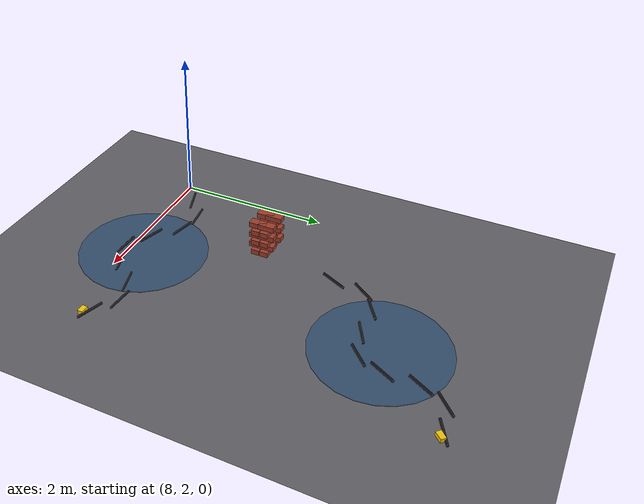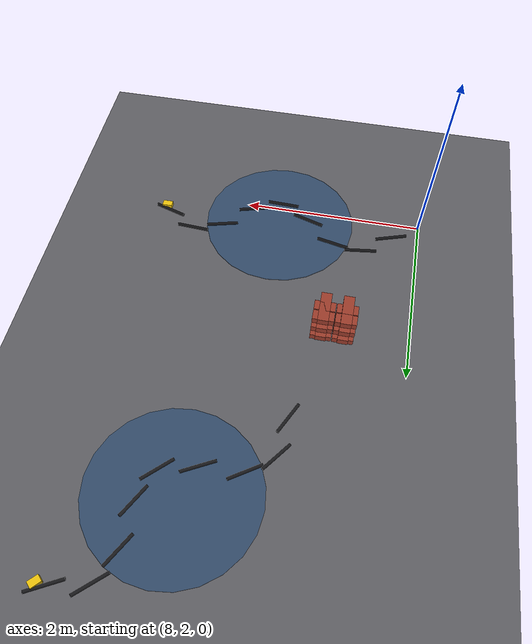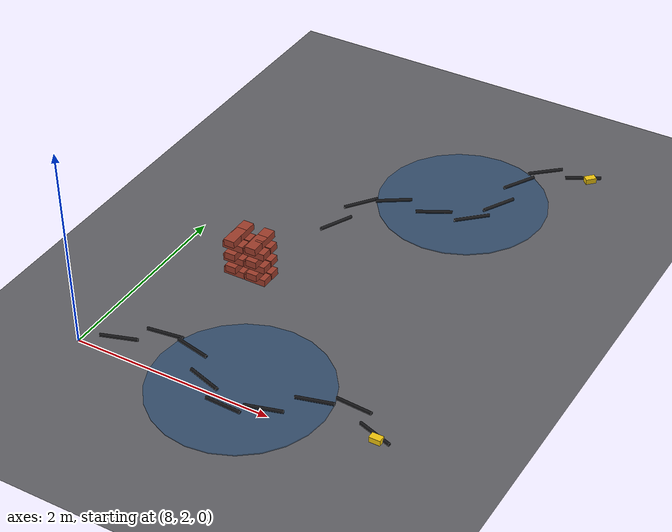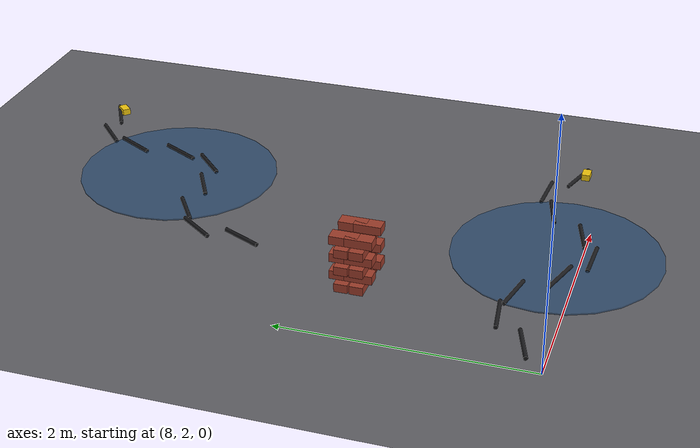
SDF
<sdf version="1.6">
 <world name="construction_lab_B">
  <model name="ground">
   <static>1</static>
   <link name="ground_link">
    <collision name="ground_col">
     <geometry><plane><normal>0 0 1</normal><size>60 60</size></plane></geometry>
     <surface><friction><ode><mu>0.9</mu><mu2>0.9</mu2></ode></friction></surface>
    </collision>
    <visual name="ground_vis">
     <geometry><plane><normal>0 0 1</normal><size>60 60</size></plane></geometry>
     <material><ambient>0.30 0.30 0.32 1</ambient><diffuse>0.38 0.38 0.40 1</diffuse></material>
    </visual>
   </link>
  </model>
  <model name="hazard_B5">
   <static>1</static>
   <link name="hB5_brick_stack_walkway_s00">
    <pose>8.685 3.54 0.035 0 0 0</pose>
    <gravity>0</gravity>
    <collision name="hB5_brick_stack_walkway_s00_col">
     <geometry><box><size>0.22 0.11 0.07</size></box></geometry>
    </collision>
    <visual name="hB5_brick_stack_walkway_s00_vis">
     <geometry><box><size>0.22 0.11 0.07</size></box></geometry>
     <material>
      <ambient>0.62 0.24 0.17 1</ambient>
      <diffuse>0.62 0.24 0.17 1</diffuse>
      <specular>0.1 0.1 0.1 1</specular>
     </material>
    </visual>
   </link>
   <link name="hB5_brick_stack_walkway_s01">
    <pose>8.915 3.54 0.035 0 0 0</pose>
    <gravity>0</gravity>
    <collision name="hB5_brick_stack_walkway_s01_col">
     <geometry><box><size>0.22 0.11 0.07</size></box></geometry>
    </collision>
    <visual name="hB5_brick_stack_walkway_s01_vis">
     <geometry><box><size>0.22 0.11 0.07</size></box></geometry>
     <material>
      <ambient>0.62 0.24 0.17 1</ambient>
      <diffuse>0.62 0.24 0.17 1</diffuse>
      <specular>0.1 0.1 0.1 1</specular>
     </material>
    </visual>
   </link>
   <link name="hB5_brick_stack_walkway_s02">
    <pose>8.685 3.66 0.035 0 0 0</pose>
    <gravity>0</gravity>
    <collision name="hB5_brick_stack_walkway_s02_col">
     <geometry><box><size>0.22 0.11 0.07</size></box></geometry>
    </collision>
    <visual name="hB5_brick_stack_walkway_s02_vis">
     <geometry><box><size>0.22 0.11 0.07</size></box></geometry>
     <material>
      <ambient>0.62 0.24 0.17 1</ambient>
      <diffuse>0.62 0.24 0.17 1</diffuse>
      <specular>0.1 0.1 0.1 1</specular>
     </material>
    </visual>
   </link>
   <link name="hB5_brick_stack_walkway_s03">
    <pose>8.915 3.66 0.035 0 0 0</pose>
    <gravity>0</gravity>
    <collision name="hB5_brick_stack_walkway_s03_col">
     <geometry><box><size>0.22 0.11 0.07</size></box></geometry>
    </collision>
    <visual name="hB5_brick_stack_walkway_s03_vis">
     <geometry><box><size>0.22 0.11 0.07</size></box></geometry>
     <material>
      <ambient>0.62 0.24 0.17 1</ambient>
      <diffuse>0.62 0.24 0.17 1</diffuse>
      <specular>0.1 0.1 0.1 1</specular>
     </material>
    </visual>
   </link>
   <link name="hB5_brick_stack_walkway_s10">
    <pose>8.685 3.54 0.11 0 0 1.5708</pose>
    <gravity>0</gravity>
    <collision name="hB5_brick_stack_walkway_s10_col">
     <geometry><box><size>0.22 0.11 0.07</size></box></geometry>
    </collision>
    <visual name="hB5_brick_stack_walkway_s10_vis">
     <geometry><box><size>0.22 0.11 0.07</size></box></geometry>
     <material>
      <ambient>0.62 0.24 0.17 1</ambient>
      <diffuse>0.62 0.24 0.17 1</diffuse>
      <specular>0.1 0.1 0.1 1</specular>
     </material>
    </visual>
   </link>
   <link name="hB5_brick_stack_walkway_s11">
    <pose>8.915 3.54 0.11 0 0 1.5708</pose>
    <gravity>0</gravity>
    <collision name="hB5_brick_stack_walkway_s11_col">
     <geometry><box><size>0.22 0.11 0.07</size></box></geometry>
    </collision>
    <visual name="hB5_brick_stack_walkway_s11_vis">
     <geometry><box><size>0.22 0.11 0.07</size></box></geometry>
     <material>
      <ambient>0.62 0.24 0.17 1</ambient>
      <diffuse>0.62 0.24 0.17 1</diffuse>
      <specular>0.1 0.1 0.1 1</specular>
     </material>
    </visual>
   </link>
   <link name="hB5_brick_stack_walkway_s12">
    <pose>8.685 3.66 0.11 0 0 1.5708</pose>
    <gravity>0</gravity>
    <collision name="hB5_brick_stack_walkway_s12_col">
     <geometry><box><size>0.22 0.11 0.07</size></box></geometry>
    </collision>
    <visual name="hB5_brick_stack_walkway_s12_vis">
     <geometry><box><size>0.22 0.11 0.07</size></box></geometry>
     <material>
      <ambient>0.62 0.24 0.17 1</ambient>
      <diffuse>0.62 0.24 0.17 1</diffuse>
      <specular>0.1 0.1 0.1 1</specular>
     </material>
    </visual>
   </link>
   <link name="hB5_brick_stack_walkway_s13">
    <pose>8.915 3.66 0.11 0 0 1.5708</pose>
    <gravity>0</gravity>
    <collision name="hB5_brick_stack_walkway_s13_col">
     <geometry><box><size>0.22 0.11 0.07</size></box></geometry>
    </collision>
    <visual name="hB5_brick_stack_walkway_s13_vis">
     <geometry><box><size>0.22 0.11 0.07</size></box></geometry>
     <material>
      <ambient>0.62 0.24 0.17 1</ambient>
      <diffuse>0.62 0.24 0.17 1</diffuse>
      <specular>0.1 0.1 0.1 1</specular>
     </material>
    </visual>
   </link>
   <link name="hB5_brick_stack_walkway_s20">
    <pose>8.685 3.54 0.185 0 0 0</pose>
    <gravity>0</gravity>
    <collision name="hB5_brick_stack_walkway_s20_col">
     <geometry><box><size>0.22 0.11 0.07</size></box></geometry>
    </collision>
    <visual name="hB5_brick_stack_walkway_s20_vis">
     <geometry><box><size>0.22 0.11 0.07</size></box></geometry>
     <material>
      <ambient>0.62 0.24 0.17 1</ambient>
      <diffuse>0.62 0.24 0.17 1</diffuse>
      <specular>0.1 0.1 0.1 1</specular>
     </material>
    </visual>
   </link>
   <link name="hB5_brick_stack_walkway_s21">
    <pose>8.915 3.54 0.185 0 0 0</pose>
    <gravity>0</gravity>
    <collision name="hB5_brick_stack_walkway_s21_col">
     <geometry><box><size>0.22 0.11 0.07</size></box></geometry>
    </collision>
    <visual name="hB5_brick_stack_walkway_s21_vis">
     <geometry><box><size>0.22 0.11 0.07</size></box></geometry>
     <material>
      <ambient>0.62 0.24 0.17 1</ambient>
      <diffuse>0.62 0.24 0.17 1</diffuse>
      <specular>0.1 0.1 0.1 1</specular>
     </material>
    </visual>
   </link>
   <link name="hB5_brick_stack_walkway_s22">
    <pose>8.685 3.66 0.185 0 0 0</pose>
    <gravity>0</gravity>
    <collision name="hB5_brick_stack_walkway_s22_col">
     <geometry><box><size>0.22 0.11 0.07</size></box></geometry>
    </collision>
    <visual name="hB5_brick_stack_walkway_s22_vis">
     <geometry><box><size>0.22 0.11 0.07</size></box></geometry>
     <material>
      <ambient>0.62 0.24 0.17 1</ambient>
      <diffuse>0.62 0.24 0.17 1</diffuse>
      <specular>0.1 0.1 0.1 1</specular>
     </material>
    </visual>
   </link>
   <link name="hB5_brick_stack_walkway_s23">
    <pose>8.915 3.66 0.185 0 0 0</pose>
    <gravity>0</gravity>
    <collision name="hB5_brick_stack_walkway_s23_col">
     <geometry><box><size>0.22 0.11 0.07</size></box></geometry>
    </collision>
    <visual name="hB5_brick_stack_walkway_s23_vis">
     <geometry><box><size>0.22 0.11 0.07</size></box></geometry>
     <material>
      <ambient>0.62 0.24 0.17 1</ambient>
      <diffuse>0.62 0.24 0.17 1</diffuse>
      <specular>0.1 0.1 0.1 1</specular>
     </material>
    </visual>
   </link>
   <link name="hB5_brick_stack_walkway_s30">
    <pose>8.685 3.54 0.26 0 0 1.5708</pose>
    <gravity>0</gravity>
    <collision name="hB5_brick_stack_walkway_s30_col">
     <geometry><box><size>0.22 0.11 0.07</size></box></geometry>
    </collision>
    <visual name="hB5_brick_stack_walkway_s30_vis">
     <geometry><box><size>0.22 0.11 0.07</size></box></geometry>
     <material>
      <ambient>0.62 0.24 0.17 1</ambient>
      <diffuse>0.62 0.24 0.17 1</diffuse>
      <specular>0.1 0.1 0.1 1</specular>
     </material>
    </visual>
   </link>
   <link name="hB5_brick_stack_walkway_s31">
    <pose>8.915 3.54 0.26 0 0 1.5708</pose>
    <gravity>0</gravity>
    <collision name="hB5_brick_stack_walkway_s31_col">
     <geometry><box><size>0.22 0.11 0.07</size></box></geometry>
    </collision>
    <visual name="hB5_brick_stack_walkway_s31_vis">
     <geometry><box><size>0.22 0.11 0.07</size></box></geometry>
     <material>
      <ambient>0.62 0.24 0.17 1</ambient>
      <diffuse>0.62 0.24 0.17 1</diffuse>
      <specular>0.1 0.1 0.1 1</specular>
     </material>
    </visual>
   </link>
   <link name="hB5_brick_stack_walkway_s32">
    <pose>8.685 3.66 0.26 0 0 1.5708</pose>
    <gravity>0</gravity>
    <collision name="hB5_brick_stack_walkway_s32_col">
     <geometry><box><size>0.22 0.11 0.07</size></box></geometry>
    </collision>
    <visual name="hB5_brick_stack_walkway_s32_vis">
     <geometry><box><size>0.22 0.11 0.07</size></box></geometry>
     <material>
      <ambient>0.62 0.24 0.17 1</ambient>
      <diffuse>0.62 0.24 0.17 1</diffuse>
      <specular>0.1 0.1 0.1 1</specular>
     </material>
    </visual>
   </link>
   <link name="hB5_brick_stack_walkway_s33">
    <pose>8.915 3.66 0.26 0 0 1.5708</pose>
    <gravity>0</gravity>
    <collision name="hB5_brick_stack_walkway_s33_col">
     <geometry><box><size>0.22 0.11 0.07</size></box></geometry>
    </collision>
    <visual name="hB5_brick_stack_walkway_s33_vis">
     <geometry><box><size>0.22 0.11 0.07</size></box></geometry>
     <material>
      <ambient>0.62 0.24 0.17 1</ambient>
      <diffuse>0.62 0.24 0.17 1</diffuse>
      <specular>0.1 0.1 0.1 1</specular>
     </material>
    </visual>
   </link>
   <link name="hB5_brick_stack_walkway_s40">
    <pose>8.685 3.54 0.335 0 0 0</pose>
    <gravity>0</gravity>
    <collision name="hB5_brick_stack_walkway_s40_col">
     <geometry><box><size>0.22 0.11 0.07</size></box></geometry>
    </collision>
    <visual name="hB5_brick_stack_walkway_s40_vis">
     <geometry><box><size>0.22 0.11 0.07</size></box></geometry>
     <material>
      <ambient>0.62 0.24 0.17 1</ambient>
      <diffuse>0.62 0.24 0.17 1</diffuse>
      <specular>0.1 0.1 0.1 1</specular>
     </material>
    </visual>
   </link>
   <link name="hB5_brick_stack_walkway_s41">
    <pose>8.915 3.54 0.335 0 0 0</pose>
    <gravity>0</gravity>
    <collision name="hB5_brick_stack_walkway_s41_col">
     <geometry><box><size>0.22 0.11 0.07</size></box></geometry>
    </collision>
    <visual name="hB5_brick_stack_walkway_s41_vis">
     <geometry><box><size>0.22 0.11 0.07</size></box></geometry>
     <material>
      <ambient>0.62 0.24 0.17 1</ambient>
      <diffuse>0.62 0.24 0.17 1</diffuse>
      <specular>0.1 0.1 0.1 1</specular>
     </material>
    </visual>
   </link>
   <link name="hB5_brick_stack_walkway_s42">
    <pose>8.685 3.66 0.335 0 0 0</pose>
    <gravity>0</gravity>
    <collision name="hB5_brick_stack_walkway_s42_col">
     <geometry><box><size>0.22 0.11 0.07</size></box></geometry>
    </collision>
    <visual name="hB5_brick_stack_walkway_s42_vis">
     <geometry><box><size>0.22 0.11 0.07</size></box></geometry>
     <material>
      <ambient>0.62 0.24 0.17 1</ambient>
      <diffuse>0.62 0.24 0.17 1</diffuse>
      <specular>0.1 0.1 0.1 1</specular>
     </material>
    </visual>
   </link>
   <link name="hB5_brick_stack_walkway_s43">
    <pose>8.915 3.66 0.335 0 0 0</pose>
    <gravity>0</gravity>
    <collision name="hB5_brick_stack_walkway_s43_col">
     <geometry><box><size>0.22 0.11 0.07</size></box></geometry>
    </collision>
    <visual name="hB5_brick_stack_walkway_s43_vis">
     <geometry><box><size>0.22 0.11 0.07</size></box></geometry>
     <material>
      <ambient>0.62 0.24 0.17 1</ambient>
      <diffuse>0.62 0.24 0.17 1</diffuse>
      <specular>0.1 0.1 0.1 1</specular>
     </material>
    </visual>
   </link>
   <link name="hB5_brick_stack_walkway_s50">
    <pose>8.685 3.54 0.41 0 0 1.5708</pose>
    <gravity>0</gravity>
    <collision name="hB5_brick_stack_walkway_s50_col">
     <geometry><box><size>0.22 0.11 0.07</size></box></geometry>
    </collision>
    <visual name="hB5_brick_stack_walkway_s50_vis">
     <geometry><box><size>0.22 0.11 0.07</size></box></geometry>
     <material>
      <ambient>0.62 0.24 0.17 1</ambient>
      <diffuse>0.62 0.24 0.17 1</diffuse>
      <specular>0.1 0.1 0.1 1</specular>
     </material>
    </visual>
   </link>
   <link name="hB5_brick_stack_walkway_s51">
    <pose>8.915 3.54 0.41 0 0 1.5708</pose>
    <gravity>0</gravity>
    <collision name="hB5_brick_stack_walkway_s51_col">
     <geometry><box><size>0.22 0.11 0.07</size></box></geometry>
    </collision>
    <visual name="hB5_brick_stack_walkway_s51_vis">
     <geometry><box><size>0.22 0.11 0.07</size></box></geometry>
     <material>
      <ambient>0.62 0.24 0.17 1</ambient>
      <diffuse>0.62 0.24 0.17 1</diffuse>
      <specular>0.1 0.1 0.1 1</specular>
     </material>
    </visual>
   </link>
   <link name="hB5_brick_stack_walkway_s52">
    <pose>8.685 3.66 0.41 0 0 1.5708</pose>
    <gravity>0</gravity>
    <collision name="hB5_brick_stack_walkway_s52_col">
     <geometry><box><size>0.22 0.11 0.07</size></box></geometry>
    </collision>
    <visual name="hB5_brick_stack_walkway_s52_vis">
     <geometry><box><size>0.22 0.11 0.07</size></box></geometry>
     <material>
      <ambient>0.62 0.24 0.17 1</ambient>
      <diffuse>0.62 0.24 0.17 1</diffuse>
      <specular>0.1 0.1 0.1 1</specular>
     </material>
    </visual>
   </link>
   <link name="hB5_brick_stack_walkway_s53">
    <pose>8.915 3.66 0.41 0 0 1.5708</pose>
    <gravity>0</gravity>
    <collision name="hB5_brick_stack_walkway_s53_col">
     <geometry><box><size>0.22 0.11 0.07</size></box></geometry>
    </collision>
    <visual name="hB5_brick_stack_walkway_s53_vis">
     <geometry><box><size>0.22 0.11 0.07</size></box></geometry>
     <material>
      <ambient>0.62 0.24 0.17 1</ambient>
      <diffuse>0.62 0.24 0.17 1</diffuse>
      <specular>0.1 0.1 0.1 1</specular>
     </material>
    </visual>
   </link>
  </model>
  <model name="hazard_B6">
   <static>1</static>
   <link name="hB6_water_puddle_water">
    <pose>9.6 2.2 0.006 0 0 0</pose>
    <gravity>0</gravity>
    <collision name="hB6_water_puddle_water_col">
     <geometry><cylinder><radius>0.85</radius><length>0.012</length></cylinder></geometry>
    </collision>
    <visual name="hB6_water_puddle_water_vis">
     <geometry><cylinder><radius>0.85</radius><length>0.012</length></cylinder></geometry>
     <material>
      <ambient>0.18 0.32 0.48 0.72</ambient>
      <diffuse>0.18 0.32 0.48 0.72</diffuse>
      <specular>0.1 0.1 0.1 1</specular>
     </material>
    </visual>
   </link>
   <link name="hB6_extension_cord_c0">
    <pose>8.3 2.2 0.017 0 1.5708 0.32</pose>
    <gravity>0</gravity>
    <collision name="hB6_extension_cord_c0_col">
     <geometry><cylinder><radius>0.017</radius><length>0.36</length></cylinder></geometry>
    </collision>
    <visual name="hB6_extension_cord_c0_vis">
     <geometry><cylinder><radius>0.017</radius><length>0.36</length></cylinder></geometry>
     <material>
      <ambient>0.1 0.1 0.11 1</ambient>
      <diffuse>0.1 0.1 0.11 1</diffuse>
      <specular>0.1 0.1 0.1 1</specular>
     </material>
    </visual>
   </link>
   <link name="hB6_extension_cord_c1">
    <pose>8.625 2.45557 0.017 0 1.5708 0.130716</pose>
    <gravity>0</gravity>
    <collision name="hB6_extension_cord_c1_col">
     <geometry><cylinder><radius>0.017</radius><length>0.36</length></cylinder></geometry>
    </collision>
    <visual name="hB6_extension_cord_c1_vis">
     <geometry><cylinder><radius>0.017</radius><length>0.36</length></cylinder></geometry>
     <material>
      <ambient>0.1 0.1 0.11 1</ambient>
      <diffuse>0.1 0.1 0.11 1</diffuse>
      <specular>0.1 0.1 0.1 1</specular>
     </material>
    </visual>
   </link>
   <link name="hB6_extension_cord_c2">
    <pose>8.95 2.4088 0.017 0 1.5708 -0.213208</pose>
    <gravity>0</gravity>
    <collision name="hB6_extension_cord_c2_col">
     <geometry><cylinder><radius>0.017</radius><length>0.36</length></cylinder></geometry>
    </collision>
    <visual name="hB6_extension_cord_c2_vis">
     <geometry><cylinder><radius>0.017</radius><length>0.36</length></cylinder></geometry>
     <material>
      <ambient>0.1 0.1 0.11 1</ambient>
      <diffuse>0.1 0.1 0.11 1</diffuse>
      <specular>0.1 0.1 0.1 1</specular>
     </material>
    </visual>
   </link>
   <link name="hB6_extension_cord_c3">
    <pose>9.275 2.11501 0.017 0 1.5708 -0.304902</pose>
    <gravity>0</gravity>
    <collision name="hB6_extension_cord_c3_col">
     <geometry><cylinder><radius>0.017</radius><length>0.36</length></cylinder></geometry>
    </collision>
    <visual name="hB6_extension_cord_c3_vis">
     <geometry><cylinder><radius>0.017</radius><length>0.36</length></cylinder></geometry>
     <material>
      <ambient>0.1 0.1 0.11 1</ambient>
      <diffuse>0.1 0.1 0.11 1</diffuse>
      <specular>0.1 0.1 0.1 1</specular>
     </material>
    </visual>
   </link>
   <link name="hB6_extension_cord_c4">
    <pose>9.6 1.92177 0.017 0 1.5708 -0.0358888</pose>
    <gravity>0</gravity>
    <collision name="hB6_extension_cord_c4_col">
     <geometry><cylinder><radius>0.017</radius><length>0.36</length></cylinder></geometry>
    </collision>
    <visual name="hB6_extension_cord_c4_vis">
     <geometry><cylinder><radius>0.017</radius><length>0.36</length></cylinder></geometry>
     <material>
      <ambient>0.1 0.1 0.11 1</ambient>
      <diffuse>0.1 0.1 0.11 1</diffuse>
      <specular>0.1 0.1 0.1 1</specular>
     </material>
    </visual>
   </link>
   <link name="hB6_extension_cord_c5">
    <pose>9.925 2.05768 0.017 0 1.5708 0.275582</pose>
    <gravity>0</gravity>
    <collision name="hB6_extension_cord_c5_col">
     <geometry><cylinder><radius>0.017</radius><length>0.36</length></cylinder></geometry>
    </collision>
    <visual name="hB6_extension_cord_c5_vis">
     <geometry><cylinder><radius>0.017</radius><length>0.36</length></cylinder></geometry>
     <material>
      <ambient>0.1 0.1 0.11 1</ambient>
      <diffuse>0.1 0.1 0.11 1</diffuse>
      <specular>0.1 0.1 0.1 1</specular>
     </material>
    </visual>
   </link>
   <link name="hB6_extension_cord_c6">
    <pose>10.25 2.36196 0.017 0 1.5708 0.261032</pose>
    <gravity>0</gravity>
    <collision name="hB6_extension_cord_c6_col">
     <geometry><cylinder><radius>0.017</radius><length>0.36</length></cylinder></geometry>
    </collision>
    <visual name="hB6_extension_cord_c6_vis">
     <geometry><cylinder><radius>0.017</radius><length>0.36</length></cylinder></geometry>
     <material>
      <ambient>0.1 0.1 0.11 1</ambient>
      <diffuse>0.1 0.1 0.11 1</diffuse>
      <specular>0.1 0.1 0.1 1</specular>
     </material>
    </visual>
   </link>
   <link name="hB6_extension_cord_c7">
    <pose>10.575 2.47464 0.017 0 1.5708 -0.062325</pose>
    <gravity>0</gravity>
    <collision name="hB6_extension_cord_c7_col">
     <geometry><cylinder><radius>0.017</radius><length>0.36</length></cylinder></geometry>
    </collision>
    <visual name="hB6_extension_cord_c7_vis">
     <geometry><cylinder><radius>0.017</radius><length>0.36</length></cylinder></geometry>
     <material>
      <ambient>0.1 0.1 0.11 1</ambient>
      <diffuse>0.1 0.1 0.11 1</diffuse>
      <specular>0.1 0.1 0.1 1</specular>
     </material>
    </visual>
   </link>
   <link name="hB6_extension_cord_c8">
    <pose>10.9 2.26241 0.017 0 1.5708 -0.31195</pose>
    <gravity>0</gravity>
    <collision name="hB6_extension_cord_c8_col">
     <geometry><cylinder><radius>0.017</radius><length>0.36</length></cylinder></geometry>
    </collision>
    <visual name="hB6_extension_cord_c8_vis">
     <geometry><cylinder><radius>0.017</radius><length>0.36</length></cylinder></geometry>
     <material>
      <ambient>0.1 0.1 0.11 1</ambient>
      <diffuse>0.1 0.1 0.11 1</diffuse>
      <specular>0.1 0.1 0.1 1</specular>
     </material>
    </visual>
   </link>
   <link name="hB6_extension_cord_plug">
    <pose>10.95 2.2 0.03 0 0 0</pose>
    <gravity>0</gravity>
    <collision name="hB6_extension_cord_plug_col">
     <geometry><box><size>0.11 0.07 0.055</size></box></geometry>
    </collision>
    <visual name="hB6_extension_cord_plug_vis">
     <geometry><box><size>0.11 0.07 0.055</size></box></geometry>
     <material>
      <ambient>0.95 0.78 0.05 1</ambient>
      <diffuse>0.95 0.78 0.05 1</diffuse>
      <specular>0.1 0.1 0.1 1</specular>
     </material>
    </visual>
   </link>
  </model>
  <model name="hazard_B7">
   <static>1</static>
   <link name="hB7_flexible_cord_c0">
    <pose>9.09428 4.66744 0.017 0 1.5708 1.12</pose>
    <gravity>0</gravity>
    <collision name="hB7_flexible_cord_c0_col">
     <geometry><cylinder><radius>0.017</radius><length>0.36</length></cylinder></geometry>
    </collision>
    <visual name="hB7_flexible_cord_c0_vis">
     <geometry><cylinder><radius>0.017</radius><length>0.36</length></cylinder></geometry>
     <material>
      <ambient>0.1 0.1 0.11 1</ambient>
      <diffuse>0.1 0.1 0.11 1</diffuse>
      <specular>0.1 0.1 0.1 1</specular>
     </material>
    </visual>
   </link>
   <link name="hB7_flexible_cord_c1">
    <pose>9.13737 5.07864 0.017 0 1.5708 0.930716</pose>
    <gravity>0</gravity>
    <collision name="hB7_flexible_cord_c1_col">
     <geometry><cylinder><radius>0.017</radius><length>0.36</length></cylinder></geometry>
    </collision>
    <visual name="hB7_flexible_cord_c1_vis">
     <geometry><cylinder><radius>0.017</radius><length>0.36</length></cylinder></geometry>
     <material>
      <ambient>0.1 0.1 0.11 1</ambient>
      <diffuse>0.1 0.1 0.11 1</diffuse>
      <specular>0.1 0.1 0.1 1</specular>
     </material>
    </visual>
   </link>
   <link name="hB7_flexible_cord_c2">
    <pose>9.39736 5.27919 0.017 0 1.5708 0.586792</pose>
    <gravity>0</gravity>
    <collision name="hB7_flexible_cord_c2_col">
     <geometry><cylinder><radius>0.017</radius><length>0.36</length></cylinder></geometry>
    </collision>
    <visual name="hB7_flexible_cord_c2_vis">
     <geometry><cylinder><radius>0.017</radius><length>0.36</length></cylinder></geometry>
     <material>
      <ambient>0.1 0.1 0.11 1</ambient>
      <diffuse>0.1 0.1 0.11 1</diffuse>
      <specular>0.1 0.1 0.1 1</specular>
     </material>
    </visual>
   </link>
   <link name="hB7_flexible_cord_c3">
    <pose>9.83454 5.30765 0.017 0 1.5708 0.495098</pose>
    <gravity>0</gravity>
    <collision name="hB7_flexible_cord_c3_col">
     <geometry><cylinder><radius>0.017</radius><length>0.36</length></cylinder></geometry>
    </collision>
    <visual name="hB7_flexible_cord_c3_vis">
     <geometry><cylinder><radius>0.017</radius><length>0.36</length></cylinder></geometry>
     <material>
      <ambient>0.1 0.1 0.11 1</ambient>
      <diffuse>0.1 0.1 0.11 1</diffuse>
      <specular>0.1 0.1 0.1 1</specular>
     </material>
    </visual>
   </link>
   <link name="hB7_flexible_cord_c4">
    <pose>10.1996 5.40615 0.017 0 1.5708 0.764111</pose>
    <gravity>0</gravity>
    <collision name="hB7_flexible_cord_c4_col">
     <geometry><cylinder><radius>0.017</radius><length>0.36</length></cylinder></geometry>
    </collision>
    <visual name="hB7_flexible_cord_c4_vis">
     <geometry><cylinder><radius>0.017</radius><length>0.36</length></cylinder></geometry>
     <material>
      <ambient>0.1 0.1 0.11 1</ambient>
      <diffuse>0.1 0.1 0.11 1</diffuse>
      <specular>0.1 0.1 0.1 1</specular>
     </material>
    </visual>
   </link>
   <link name="hB7_flexible_cord_c5">
    <pose>10.3285 5.73399 0.017 0 1.5708 1.07558</pose>
    <gravity>0</gravity>
    <collision name="hB7_flexible_cord_c5_col">
     <geometry><cylinder><radius>0.017</radius><length>0.36</length></cylinder></geometry>
    </collision>
    <visual name="hB7_flexible_cord_c5_vis">
     <geometry><cylinder><radius>0.017</radius><length>0.36</length></cylinder></geometry>
     <material>
      <ambient>0.1 0.1 0.11 1</ambient>
      <diffuse>0.1 0.1 0.11 1</diffuse>
      <specular>0.1 0.1 0.1 1</specular>
     </material>
    </visual>
   </link>
   <link name="hB7_flexible_cord_c6">
    <pose>10.3367 6.17912 0.017 0 1.5708 1.06103</pose>
    <gravity>0</gravity>
    <collision name="hB7_flexible_cord_c6_col">
     <geometry><cylinder><radius>0.017</radius><length>0.36</length></cylinder></geometry>
    </collision>
    <visual name="hB7_flexible_cord_c6_vis">
     <geometry><cylinder><radius>0.017</radius><length>0.36</length></cylinder></geometry>
     <material>
      <ambient>0.1 0.1 0.11 1</ambient>
      <diffuse>0.1 0.1 0.11 1</diffuse>
      <specular>0.1 0.1 0.1 1</specular>
     </material>
    </visual>
   </link>
   <link name="hB7_flexible_cord_c7">
    <pose>10.4823 6.49076 0.017 0 1.5708 0.737675</pose>
    <gravity>0</gravity>
    <collision name="hB7_flexible_cord_c7_col">
     <geometry><cylinder><radius>0.017</radius><length>0.36</length></cylinder></geometry>
    </collision>
    <visual name="hB7_flexible_cord_c7_vis">
     <geometry><cylinder><radius>0.017</radius><length>0.36</length></cylinder></geometry>
     <material>
      <ambient>0.1 0.1 0.11 1</ambient>
      <diffuse>0.1 0.1 0.11 1</diffuse>
      <specular>0.1 0.1 0.1 1</specular>
     </material>
    </visual>
   </link>
   <link name="hB7_flexible_cord_c8">
    <pose>10.8609 6.57604 0.017 0 1.5708 0.48805</pose>
    <gravity>0</gravity>
    <collision name="hB7_flexible_cord_c8_col">
     <geometry><cylinder><radius>0.017</radius><length>0.36</length></cylinder></geometry>
    </collision>
    <visual name="hB7_flexible_cord_c8_vis">
     <geometry><cylinder><radius>0.017</radius><length>0.36</length></cylinder></geometry>
     <material>
      <ambient>0.1 0.1 0.11 1</ambient>
      <diffuse>0.1 0.1 0.11 1</diffuse>
      <specular>0.1 0.1 0.1 1</specular>
     </material>
    </visual>
   </link>
   <link name="hB7_flexible_cord_plug">
    <pose>10.9406 6.56843 0.03 0 0 0.8</pose>
    <gravity>0</gravity>
    <collision name="hB7_flexible_cord_plug_col">
     <geometry><box><size>0.11 0.07 0.055</size></box></geometry>
    </collision>
    <visual name="hB7_flexible_cord_plug_vis">
     <geometry><box><size>0.11 0.07 0.055</size></box></geometry>
     <material>
      <ambient>0.95 0.78 0.05 1</ambient>
      <diffuse>0.95 0.78 0.05 1</diffuse>
      <specular>0.1 0.1 0.1 1</specular>
     </material>
    </visual>
   </link>
   <link name="hB7_water_puddle_water">
    <pose>10 5.6 0.006 0 0 0</pose>
    <gravity>0</gravity>
    <collision name="hB7_water_puddle_water_col">
     <geometry><cylinder><radius>0.85</radius><length>0.012</length></cylinder></geometry>
    </collision>
    <visual name="hB7_water_puddle_water_vis">
     <geometry><cylinder><radius>0.85</radius><length>0.012</length></cylinder></geometry>
     <material>
      <ambient>0.18 0.32 0.48 0.72</ambient>
      <diffuse>0.18 0.32 0.48 0.72</diffuse>
      <specular>0.1 0.1 0.1 1</specular>
     </material>
    </visual>
   </link>
  </model>
 </world>
</sdf>
